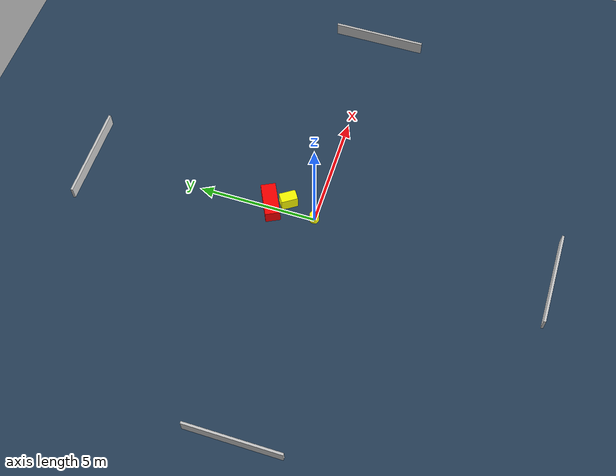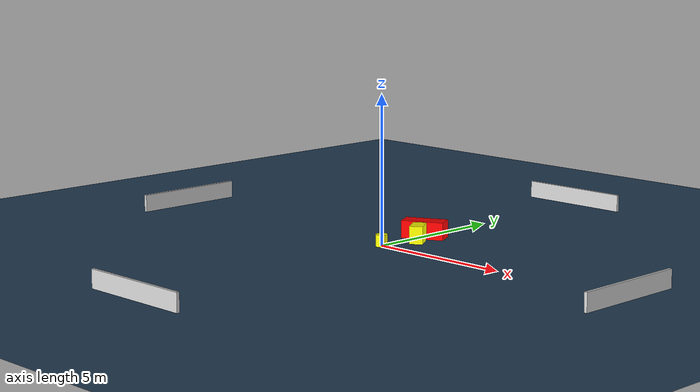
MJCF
<?xml version="1.0" ?>
<mujoco model="generated_environment">
  <option timestep="0.01" integrator="RK4" cone="elliptic"/>
  <default>
    <geom density="1"/>
  </default>
  <asset>
    <texture builtin="gradient" height="3072" name="skybox" rgb1="0.3 0.5 0.7" rgb2="0 0 0" type="skybox" width="512"/>
    <texture builtin="checker" height="300" name="groundplane" rgb1="0.2 0.3 0.4" rgb2="0.1 0.2 0.3" type="2d" width="300"/>
    <material name="groundplane" reflectance="0.2" texrepeat="5 5" texture="groundplane"/>
  </asset>
  <worldbody>
    <light dir="0 0 -1" directional="true" pos="0 0 1.5"/>
    <geom condim="3" friction="0.5 0.005 0.001" material="groundplane" name="floor" pos="0 0 0" size="0 0 0.05" type="plane"/>
    <body name="walls">
      <geom name="wall_1" condim="4" pos="-10.0 0.0 0.3" rgba="0.800000011920929 0.800000011920929 0.800000011920929 1.0" size="0.05 2.0 0.3" type="box"/>
      <geom name="wall_2" condim="4" pos="10.0 0.0 0.3" rgba="0.800000011920929 0.800000011920929 0.800000011920929 1.0" size="0.05 2.0 0.3" type="box"/>
      <geom name="wall_3" condim="4" pos="0.0 -10.0 0.3" rgba="0.800000011920929 0.800000011920929 0.800000011920929 1.0" size="2.0 0.05 0.3" type="box"/>
      <geom name="wall_4" condim="4" pos="0.0 10.0 0.3" rgba="0.800000011920929 0.800000011920929 0.800000011920929 1.0" size="2.0 0.05 0.3" type="box"/>
    </body>
    <body name="robot">
      <joint name="joint_x" type="slide" pos="0 0 0" axis="1 0 0"/>
      <joint name="joint_y" type="slide" pos="0 0 0" axis="0 1 0"/>
      <geom name="robot" type="cylinder" pos="0.0 0.0 0.2" size="0.2 0.2 0.0" mass="5.0" friction="1.0 0.005 0.0001" condim="4" rgba="1.0 1.0 0.0 1.0"/>
    </body>
    <body name="obstacle_1_movable">
      <geom name="obstacle_1_movable" condim="4" pos="0.4248919610704913 1.2621406564574627 0.3" euler="0 0 303.3522182654313" friction="0.0 0.005 0.001" rgba="1.0 1.0 0.0 1.0" size="0.3512529630918521 0.2231413284283847 0.3" type="box" mass="0.1"/>
      <joint type="free"/>
    </body>
    <body name="obstacle_2_static">
      <geom name="obstacle_2_static" condim="4" pos="0.08521311474277861 1.939819082543534 0.3" euler="0 0 206.29280195219903" friction="0.0 0.005 0.001" rgba="1.0 0.0 0.0 1.0" size="0.7245691363876103 0.31484989518838036 0.3" type="box"/>
    </body>
  </worldbody>
  <actuator>
    <motor name="actuator_x" joint="joint_x" gear="1" ctrlrange="-1 1"/>
    <motor name="actuator_y" joint="joint_y" gear="1" ctrlrange="-1 1"/>
  </actuator>
</mujoco>
